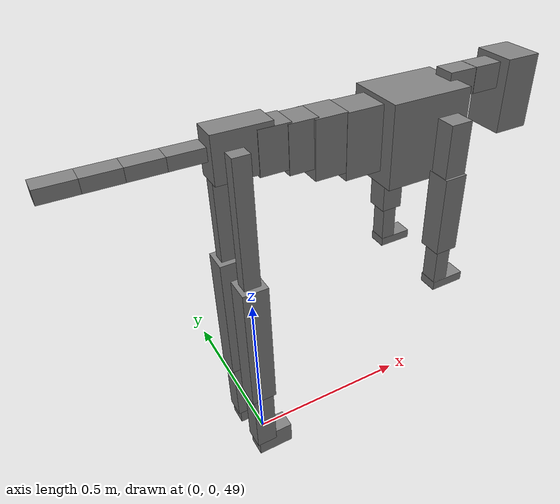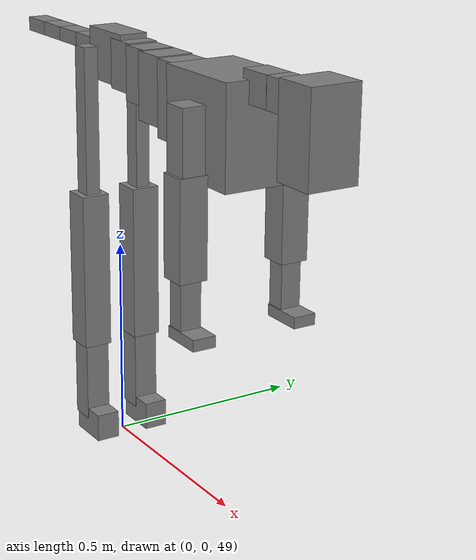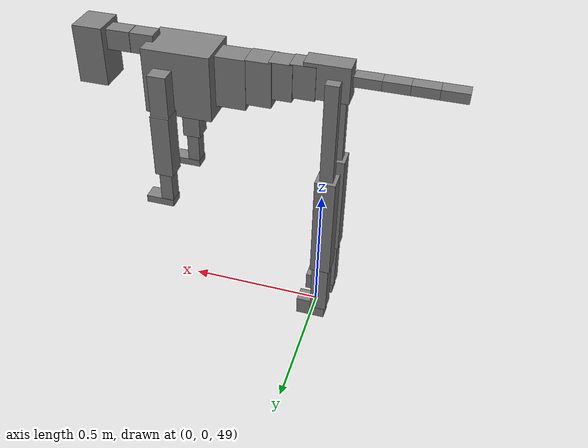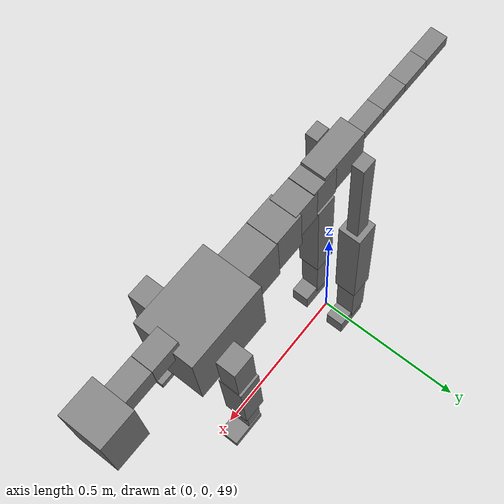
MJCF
<mujoco model="dog">

    <default>
        <joint armature="0.02" stiffness="1" damping="0.2" limited="true"/>
        <geom condim="3" friction="1 0.05 0.05" margin="0.01"/>
        <motor ctrllimited="true" ctrlrange="-1.0 1.0" forcelimited="true" gear="50"/>
    </default>

    <compiler inertiafromgeom="true" angle="radian"/>

    <option timestep="0.016" iterations="50" tolerance="1e-10" solver="Newton" jacobian="dense" cone="pyramidal"/>

    <size nconmax="20000" njmax="60000" nstack="5000000"/>
    <visual>
        <map force="0.1" zfar="30"/>
        <rgba haze="0.15 0.25 0.35 1"/>
        <quality shadowsize="2048"/>
        <global offwidth="800" offheight="800"/>
    </visual>

    <asset>
        <texture type="skybox" builtin="gradient" rgb1="0.3 0.5 0.7" rgb2="0 0 0" width="512" height="512"/>
        <texture name="texplane" type="2d" builtin="checker" rgb1=".2 .3 .4" rgb2=".1 0.15 0.2" width="512" height="512"
                 mark="cross" markrgb=".8 .8 .8"/>
        <texture name="texgeom" type="cube" builtin="flat" mark="cross" width="127" height="1278" rgb1="0.8 0.6 0.4"
                 rgb2="0.8 0.6 0.4" markrgb="1 1 1" random="0.01"/>

        <material name="matplane" reflectance="0.3" texture="texplane" texrepeat="1 1" texuniform="true"/>
        <material name="matgeom" texture="texgeom" texuniform="true" rgba="0.8 0.6 .4 1"/>
    </asset>

    <worldbody>
        <geom name="floor" pos="0 0 0" size="0 0 .25" type="plane" material="matplane" condim="3"/>

        <light directional="false" diffuse=".2 .2 .2" specular="0 0 0" pos="0 0 5" dir="0 0 -1" castshadow="false"/>
        <light mode="targetbodycom" target="torso" directional="false" diffuse=".8 .8 .8" specular="0.3 0.3 0.3"
               pos="0 0 4.0" dir="0 0 -1"/>

        <body name="root" pos="0 0 50">
            <freejoint name="root_1"/>
            <geom type="box" pos="0 0 -0.02" size="0.0774  0.0358  0.063" density="2030"/>

            <body name="spine1" pos="0.054 0 0">
                <joint name="spine1_y" axis="0 1 0" range="0 0.7" limited="true"/>
                <geom type="box" pos="0.02375 0 -0.03" size="0.04375  0.0375  0.05985" density="2030"/>

                <body name="spine2" pos="0.0612 0 0">
                    <joint name="spine2_y" axis="0 1 0" range="-0.15 0.15" limited="true"/>
                    <geom type="box" pos="0.03555  0  -0.04" size="0.04055  0.039  0.06615" density="2030"/>

                    <body name="spine3" pos="0.0730 0 0">
                        <joint name="spine3_y" axis="0 1 0" range="-0.15 0.15" limited="true"/>
                        <geom type="box" pos="0.03555  0  -0.057" size="0.04555  0.0445  0.081" density="2030"/>

                        <body name="spine4" pos="0.0780 0 0">
                            <joint name="spine4_y" axis="0 1 0" range="-0.15 0.15" limited="true"/>
                            <geom type="box" pos="0.05265  0  -0.07" size="0.05265  0.045  0.09135" density="2030"/>

                            <body name="torso" pos="0.1082 0 0">
                                <joint name="torso_y" axis="0 1 0" range="-0.15 0.15" limited="true"/>
                                <geom type="box" pos="0.11925  0  -0.085" size="0.11925  0.085  0.11745"
                                      density="2030"/>

                                <body name="neck1" pos="0.2160  0   0.0180">
                                    <joint name="neck1_y" axis="0 1 0" range="-1.2  -1" limited="true"/>
                                    <geom type="box" pos="0.0423  0  0" size="0.0423  0.03  0.036" density="2325"/>

                                    <body name="neck2" pos="0.0853  0  0">
                                        <joint name="neck2_y" axis="0 1 0" range="0.1  0" limited="true"/>
                                        <geom type="box" pos="0.0423  0  0" size="0.0423  0.03  0.036" density="2325"/>

                                        <body name="head" pos="0.0853  0  0">
                                            <joint name="head_y" axis="0 1 0" range="-0.3  -0.2" limited="true"/>
                                            <geom type="box" pos="0.0531  0  -0.055" size="0.0531  0.06  0.1044"
                                                  density="4030"/>

                                        </body>
                                    </body>
                                </body>

                                <body name="front_shoulder" pos="0.156  0   -0.0480">
                                    <joint name="front_shoulder_y" axis="0 1 0" range="-1 1.5" limited="true"/>
                                    <geom type="box" pos="0 0.13 -0.0611" size="0.0320  0.0273  0.0877" density="1158"/>
                                    <geom type="box" pos="0 -0.13 -0.0611" size="0.0320  0.0273  0.0877"
                                          density="1158"/>

                                    <body name="front_elbow" pos="0  0  -0.1221">
                                        <joint name="front_elbow_y" axis="0 1 0" range="-2 0" limited="true"/>
                                        <geom type="box" pos="0 0.13 -0.1164" size="0.0332  0.0339  0.1164"
                                              density="1081"/>
                                        <geom type="box" pos="0 -0.13 -0.1164" size="0.0332  0.0339  0.1164"
                                              density="1081"/>

                                        <body name="front_wrist" pos="0  0  -0.2328">
                                            <joint name="front_wrist_y" axis="0 1 0" range="-0.2 0" limited="true"/>
                                            <geom type="box" pos="0 0.13 -0.0622" size="0.0226  0.0251  0.0754"
                                                  density="1664"/>
                                            <geom type="box" pos="0 -0.13 -0.0622" size="0.0226  0.0251  0.0754"
                                                  density="1664"/>

                                            <body name="front_finger_end" pos="0  0  -0.1245">
                                                <joint name="front_finger_y" axis="0 1 0" range="-0.4 1"
                                                       limited="true"/>
                                                <geom type="box" pos="0.0279  0.13  0.0016"
                                                      size="0.0512  0.0279  0.0134" density="1515"/>
                                                <geom type="box" pos="0.0279  -0.13  0.0016"
                                                      size="0.0512  0.0279  0.0134" density="1515"/>

                                            </body>

                                        </body>
                                    </body>
                                </body>

                            </body>
                        </body>
                    </body>
                </body>
            </body>

            <body name="back_hip" pos="-0.03 0 -0.018">
                <joint name="back_hip_y" axis="0 1 0" range="-1.5 0.3" limited="true"/>
                <geom type="box" pos="0 0.07 -0.1789" size="0.0232  0.0182  0.2017" density="1154"/>
                <geom type="box" pos="0 -0.07 -0.1789" size="0.0232  0.0182  0.2017" density="1154"/>

                <body name="back_knee" pos="0  0  -0.3578">
                    <joint name="back_knee_y" axis="0 1 0" range="0 2.8" limited="true"/>
                    <geom type="box" pos="0 0.07 -0.1818" size="0.0362  0.0357  0.1974" density="1227"/>
                    <geom type="box" pos="0 -0.07 -0.1818" size="0.0362  0.0357  0.1974" density="1227"/>

                    <body name="back_ankle" pos="0  0  -0.3637">
                        <joint name="back_ankle_y" axis="0 1 0" range="-2.2 0" limited="true"/>
                        <geom type="box" pos="0 0.07 -0.1008" size="0.0305  0.0305  0.1121" density="1284"/>
                        <geom type="box" pos="0 -0.07 -0.1008" size="0.0305  0.0305  0.1121" density="1284"/>

                        <body name="back_toe_end" pos="0  0  -0.2016">
                            <joint name="back_toe_y" axis="0 1 0" range="-0.4 1" limited="true"/>
                            <geom type="box" pos="0.0292  0.07  -0.0197" size="0.0536  0.0292  0.0347" density="1515"/>
                            <geom type="box" pos="0.0292  -0.07  -0.0197" size="0.0536  0.0292  0.0347" density="1515"/>

                        </body>
                    </body>
                </body>
            </body>

            <body name="tail1" pos="-0.074 0 -0.006">
                <joint name="tail1_y" axis="0 1 0" range="-0.2 0.2" limited="true"/>
                <geom type="box" pos="-0.0536  0  0" size="0.045  0.025  0.0175" density="1587"/>

                <body name="tail2" pos="-0.09 0 0">
                    <joint name="tail2_y" axis="0 1 0" range="-0.2 0.2" limited="true"/>
                    <geom type="box" pos="-0.0536  0  0" size="0.045  0.025  0.0175" density="1587"/>

                    <body name="tail3" pos="-0.09 0 0">
                        <joint name="tail3_y" axis="0 1 0" range="-0.2 0.2" limited="true"/>
                        <geom type="box" pos="-0.0536  0  0" size="0.045  0.025  0.0175" density="1587"/>

                        <body name="tail4" pos="-0.09 0 0">
                            <joint name="tail4_y" axis="0 1 0" range="-0.2 0.2" limited="true"/>
                            <geom type="box" pos="-0.0536  0  0" size="0.045  0.025  0.0175" density="1587"/>

                        </body>
                    </body>
                </body>
            </body>
        </body>
    </worldbody>

    <actuator>
        <motor joint="spine1_y" forcerange="-150 150     "/>
        <motor joint="spine2_y" forcerange="-150 150     "/>
        <motor joint="spine3_y" forcerange="-150 150     "/>
        <motor joint="spine4_y" forcerange="-150 150     "/>
        <motor joint="torso_y" forcerange="-150 150     "/>
        <motor joint="neck1_y" forcerange="-100 100       "/>
        <motor joint="neck2_y" forcerange="-100 100       "/>
        <motor joint="head_y" forcerange="-150 150       "/>
        <motor joint="front_shoulder_y" forcerange="-173.76 108.35"/>
        <motor joint="front_elbow_y" forcerange="-175.42 171.45"/>
        <motor joint="front_wrist_y" forcerange="-96.20 104.28"/>
        <motor joint="front_finger_y" forcerange="-36.16 72.82"/>
        <motor joint="back_hip_y" forcerange="-215.64 227.42"/>
        <motor joint="back_knee_y" forcerange="-389.61 329.01"/>
        <motor joint="back_angle_y" forcerange="-152.94 234.35"/>
        <motor joint="back_toe_y" forcerange="-100.16 53.52"/>
        <motor joint="tail1_y" forcerange="-50 50     "/>
        <motor joint="tail2_y" forcerange="-50 50     "/>
        <motor joint="tail3_y" forcerange="-50 50     "/>
        <motor joint="tail4_y" forcerange="-50 50     "/>
    </actuator>
</mujoco>
